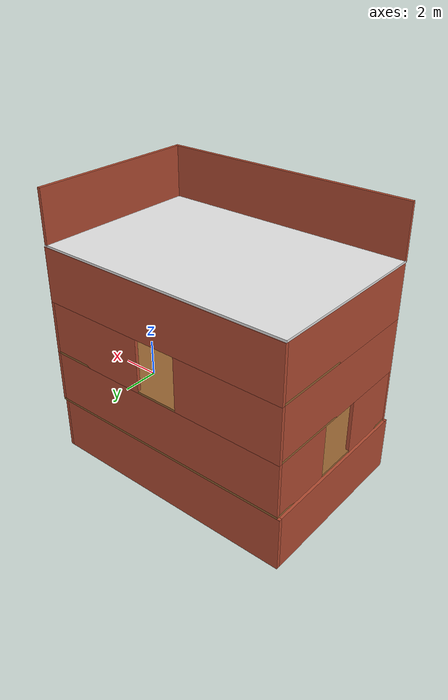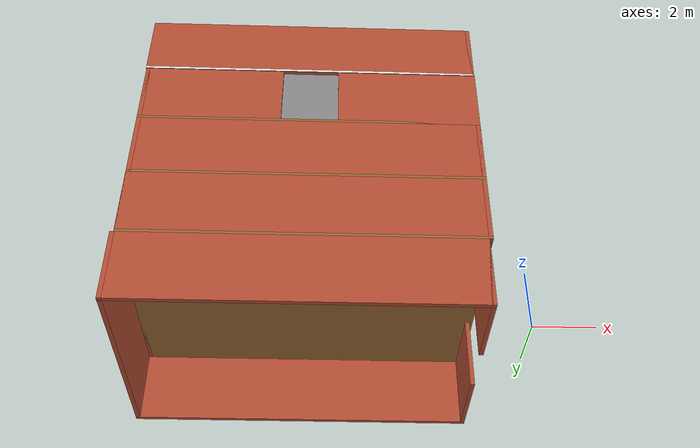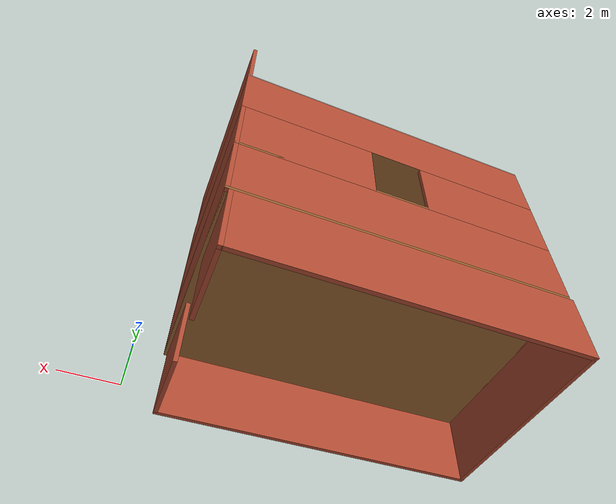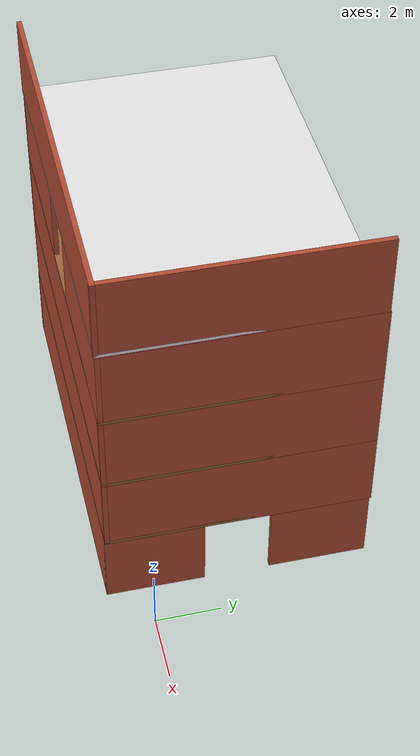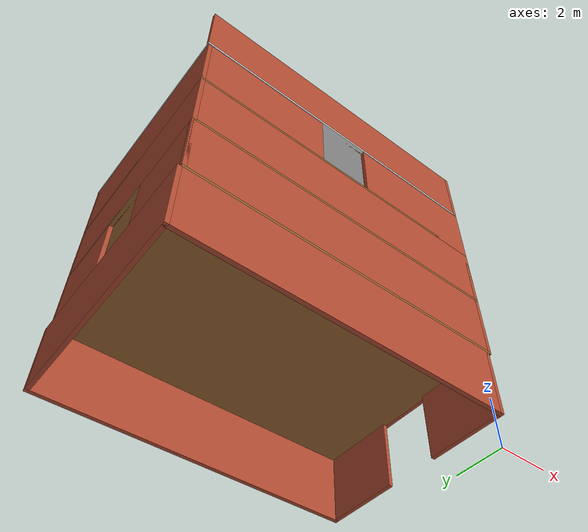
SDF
<?xml version='1.0'?>
<sdf version='1.8'>
  <model name='tower'>
    <pose>-6.62818 2.78501 0 0 -0 0</pose>
    <link name='Floor_0'>
      <collision name='Floor_0_Collision'>
        <geometry>
          <box>
            <size>12 8.00013 0.1</size>
          </box>
        </geometry>
        <pose>0 0 0.05 0 -0 0</pose>
      </collision>
      <visual name='Floor_0_Visual'>
        <pose>0 0 0.05 0 -0 0</pose>
        <geometry>
          <box>
            <size>12 8.00013 0.1</size>
          </box>
        </geometry>
        <material>
          <ambient>0.6 0.4 0.2 1</ambient>
          <diffuse>0.6 0.4 0.2 1</diffuse>
          <specular>0.1 0.1 0.1 1</specular>
        </material>
        <meta>
          <layer>1</layer>
        </meta>
      </visual>
      <pose>-0.508178 0.009968 2.5 0 -0 0</pose>
    </link>
    <link name='Floor_1'>
      <collision name='Floor_1_Collision'>
        <geometry>
          <box>
            <size>12 8 0.1</size>
          </box>
        </geometry>
        <pose>0 0 0.05 0 -0 0</pose>
      </collision>
      <visual name='Floor_1_Visual'>
        <pose>0 0 0.05 0 -0 0</pose>
        <geometry>
          <box>
            <size>12 8 0.1</size>
          </box>
        </geometry>
        <material>
          <ambient>0.6 0.4 0.2 1</ambient>
          <diffuse>0.6 0.4 0.2 1</diffuse>
          <specular>0.1 0.1 0.1 1</specular>
        </material>
        <meta>
          <layer>2</layer>
        </meta>
      </visual>
      <pose>-0.508178 0.009968 5 0 -0 0</pose>
    </link>
    <link name='Floor_2'>
      <collision name='Floor_2_Collision'>
        <geometry>
          <box>
            <size>12 8 0.1</size>
          </box>
        </geometry>
        <pose>0 0 0.05 0 -0 0</pose>
      </collision>
      <visual name='Floor_2_Visual'>
        <pose>0 0 0.05 0 -0 0</pose>
        <geometry>
          <box>
            <size>12 8 0.1</size>
          </box>
        </geometry>
        <material>
          <ambient>0.6 0.4 0.2 1</ambient>
          <diffuse>0.6 0.4 0.2 1</diffuse>
          <specular>0.1 0.1 0.1 1</specular>
        </material>
        <meta>
          <layer>3</layer>
        </meta>
      </visual>
      <pose>-0.508178 0.009968 7.5 0 -0 0</pose>
    </link>
    <link name='Floor_4'>
      <collision name='Floor_4_Collision'>
        <geometry>
          <box>
            <size>12 8 0.1</size>
          </box>
        </geometry>
        <pose>0 0 0.05 0 -0 0</pose>
      </collision>
      <visual name='Floor_4_Visual'>
        <pose>0 0 0.05 0 -0 0</pose>
        <geometry>
          <box>
            <size>12 8 0.1</size>
          </box>
        </geometry>
        <material>
          <ambient>0.9 0.9 0.9 1</ambient>
          <diffuse>0.9 0.9 0.9 1</diffuse>
          <specular>0.2 0.2 0.2 1</specular>
        </material>
        <meta>
          <layer>4</layer>
        </meta>
      </visual>
      <pose>-0.528178 -0.010032 10 0 -0 0</pose>
    </link>
    <link name='Wall_0'>
      <collision name='Wall_0_Collision'>
        <geometry>
          <box>
            <size>12 0.15 2.5</size>
          </box>
        </geometry>
        <pose>0 0 1.25 0 -0 0</pose>
      </collision>
      <visual name='Wall_0_Visual'>
        <pose>0 0 1.25 0 -0 0</pose>
        <geometry>
          <box>
            <size>12 0.15 2.5</size>
          </box>
        </geometry>
        <material>
          <ambient>0.7 0.3 0.2 1</ambient>
          <diffuse>0.7 0.3 0.2 1</diffuse>
          <specular>0.1 0.1 0.1 1</specular>
        </material>
        <meta>
          <layer>0</layer>
        </meta>
      </visual>
      <pose>-0.628178 3.93497 0 0 -0 3.14159</pose>
    </link>
    <link name='Wall_10'>
      <collision name='Wall_10_Collision'>
        <geometry>
          <box>
            <size>12 0.15 2.5</size>
          </box>
        </geometry>
        <pose>0 0 1.25 0 -0 0</pose>
      </collision>
      <visual name='Wall_10_Visual'>
        <pose>0 0 1.25 0 -0 0</pose>
        <geometry>
          <box>
            <size>12 0.15 2.5</size>
          </box>
        </geometry>
        <material>
          <ambient>0.7 0.3 0.2 1</ambient>
          <diffuse>0.7 0.3 0.2 1</diffuse>
          <specular>0.1 0.1 0.1 1</specular>
        </material>
        <meta>
          <layer>1</layer>
        </meta>
      </visual>
      <pose>-0.508178 -3.91503 2.5 0 -0 0</pose>
    </link>
    <link name='Wall_12'>
      <collision name='Wall_12_Collision'>
        <geometry>
          <box>
            <size>8 0.15 2.5</size>
          </box>
        </geometry>
        <pose>0 0 1.25 0 -0 0</pose>
      </collision>
      <visual name='Wall_12_Visual'>
        <pose>0 0 1.25 0 -0 0</pose>
        <geometry>
          <box>
            <size>8 0.15 2.5</size>
          </box>
        </geometry>
        <material>
          <ambient>0.7 0.3 0.2 1</ambient>
          <diffuse>0.7 0.3 0.2 1</diffuse>
          <specular>0.1 0.1 0.1 1</specular>
        </material>
        <meta>
          <layer>1</layer>
        </meta>
      </visual>
      <pose>5.41682 0.009968 2.5 0 -0 -1.5708</pose>
    </link>
    <link name='Wall_13'>
      <collision name='Wall_13_Collision'>
        <geometry>
          <box>
            <size>3 0.15 2.5</size>
          </box>
        </geometry>
        <pose>0 0 1.25 0 -0 0</pose>
      </collision>
      <visual name='Wall_13_Visual'>
        <pose>0 0 1.25 0 -0 0</pose>
        <geometry>
          <box>
            <size>3 0.15 2.5</size>
          </box>
        </geometry>
        <material>
          <ambient>0.7 0.3 0.2 1</ambient>
          <diffuse>0.7 0.3 0.2 1</diffuse>
          <specular>0.1 0.1 0.1 1</specular>
        </material>
        <meta>
          <layer>1</layer>
        </meta>
      </visual>
      <pose>-6.43318 2.50997 2.5 0 -0 -1.5708</pose>
    </link>
    <link name='Wall_15'>
      <collision name='Wall_15_Collision'>
        <geometry>
          <box>
            <size>3 0.15 2.5</size>
          </box>
        </geometry>
        <pose>0 0 1.25 0 -0 0</pose>
      </collision>
      <visual name='Wall_15_Visual'>
        <pose>0 0 1.25 0 -0 0</pose>
        <geometry>
          <box>
            <size>3 0.15 2.5</size>
          </box>
        </geometry>
        <material>
          <ambient>0.7 0.3 0.2 1</ambient>
          <diffuse>0.7 0.3 0.2 1</diffuse>
          <specular>0.1 0.1 0.1 1</specular>
        </material>
        <meta>
          <layer>1</layer>
        </meta>
      </visual>
      <pose>-6.43318 -2.49003 2.5 0 -0 1.5708</pose>
    </link>
    <link name='Wall_18'>
      <collision name='Wall_18_Collision'>
        <geometry>
          <box>
            <size>12 0.15 2.5</size>
          </box>
        </geometry>
        <pose>0 0 1.25 0 -0 0</pose>
      </collision>
      <visual name='Wall_18_Visual'>
        <pose>0 0 1.25 0 -0 0</pose>
        <geometry>
          <box>
            <size>12 0.15 2.5</size>
          </box>
        </geometry>
        <material>
          <ambient>0.7 0.3 0.2 1</ambient>
          <diffuse>0.7 0.3 0.2 1</diffuse>
          <specular>0.1 0.1 0.1 1</specular>
        </material>
        <meta>
          <layer>2</layer>
        </meta>
      </visual>
      <pose>-0.508178 -3.91503 5 0 -0 0</pose>
    </link>
    <link name='Wall_19'>
      <collision name='Wall_19_Collision'>
        <geometry>
          <box>
            <size>8 0.15 2.5</size>
          </box>
        </geometry>
        <pose>0 0 1.25 0 -0 0</pose>
      </collision>
      <visual name='Wall_19_Visual'>
        <pose>0 0 1.25 0 -0 0</pose>
        <geometry>
          <box>
            <size>8 0.15 2.5</size>
          </box>
        </geometry>
        <material>
          <ambient>0.7 0.3 0.2 1</ambient>
          <diffuse>0.7 0.3 0.2 1</diffuse>
          <specular>0.1 0.1 0.1 1</specular>
        </material>
        <meta>
          <layer>2</layer>
        </meta>
      </visual>
      <pose>5.41682 0.009969 5 0 -0 -1.5708</pose>
    </link>
    <link name='Wall_2'>
      <collision name='Wall_2_Collision'>
        <geometry>
          <box>
            <size>8 0.15 2.5</size>
          </box>
        </geometry>
        <pose>0 0 1.25 0 -0 0</pose>
      </collision>
      <visual name='Wall_2_Visual'>
        <pose>0 0 1.25 0 -0 0</pose>
        <geometry>
          <box>
            <size>8 0.15 2.5</size>
          </box>
        </geometry>
        <material>
          <ambient>0.7 0.3 0.2 1</ambient>
          <diffuse>0.7 0.3 0.2 1</diffuse>
          <specular>0.1 0.1 0.1 1</specular>
        </material>
        <meta>
          <layer>0</layer>
        </meta>
      </visual>
      <pose>-6.55318 0.009968 0 0 -0 -1.5708</pose>
    </link>
    <link name='Wall_20'>
      <collision name='Wall_20_Collision'>
        <geometry>
          <box>
            <size>8 0.15 2.5</size>
          </box>
        </geometry>
        <pose>0 0 1.25 0 -0 0</pose>
      </collision>
      <visual name='Wall_20_Visual'>
        <pose>0 0 1.25 0 -0 0</pose>
        <geometry>
          <box>
            <size>8 0.15 2.5</size>
          </box>
        </geometry>
        <material>
          <ambient>0.7 0.3 0.2 1</ambient>
          <diffuse>0.7 0.3 0.2 1</diffuse>
          <specular>0.1 0.1 0.1 1</specular>
        </material>
        <meta>
          <layer>2</layer>
        </meta>
      </visual>
      <pose>-6.43318 0.009968 5 0 -0 -1.5708</pose>
    </link>
    <link name='Wall_24'>
      <collision name='Wall_24_Collision'>
        <geometry>
          <box>
            <size>5 0.15 2.5</size>
          </box>
        </geometry>
        <pose>0 0 1.25 0 -0 0</pose>
      </collision>
      <visual name='Wall_24_Visual'>
        <pose>0 0 1.25 0 -0 0</pose>
        <geometry>
          <box>
            <size>5 0.15 2.5</size>
          </box>
        </geometry>
        <material>
          <ambient>0.7 0.3 0.2 1</ambient>
          <diffuse>0.7 0.3 0.2 1</diffuse>
          <specular>0.1 0.1 0.1 1</specular>
        </material>
        <meta>
          <layer>2</layer>
        </meta>
      </visual>
      <pose>-4.00818 3.93497 5 0 -0 0</pose>
    </link>
    <link name='Wall_26'>
      <collision name='Wall_26_Collision'>
        <geometry>
          <box>
            <size>5 0.15 2.5</size>
          </box>
        </geometry>
        <pose>0 0 1.25 0 -0 0</pose>
      </collision>
      <visual name='Wall_26_Visual'>
        <pose>0 0 1.25 0 -0 0</pose>
        <geometry>
          <box>
            <size>5 0.15 2.5</size>
          </box>
        </geometry>
        <material>
          <ambient>0.7 0.3 0.2 1</ambient>
          <diffuse>0.7 0.3 0.2 1</diffuse>
          <specular>0.1 0.1 0.1 1</specular>
        </material>
        <meta>
          <layer>2</layer>
        </meta>
      </visual>
      <pose>2.99182 3.93497 5 0 -0 3.14159</pose>
    </link>
    <link name='Wall_29'>
      <collision name='Wall_29_Collision'>
        <geometry>
          <box>
            <size>8 0.15 2.5</size>
          </box>
        </geometry>
        <pose>0 0 1.25 0 -0 0</pose>
      </collision>
      <visual name='Wall_29_Visual'>
        <pose>0 0 1.25 0 -0 0</pose>
        <geometry>
          <box>
            <size>8 0.15 2.5</size>
          </box>
        </geometry>
        <material>
          <ambient>0.7 0.3 0.2 1</ambient>
          <diffuse>0.7 0.3 0.2 1</diffuse>
          <specular>0.1 0.1 0.1 1</specular>
        </material>
        <meta>
          <layer>3</layer>
        </meta>
      </visual>
      <pose>5.41682 0.009968 7.5 0 -0 -1.5708</pose>
    </link>
    <link name='Wall_3'>
      <collision name='Wall_3_Collision'>
        <geometry>
          <box>
            <size>12 0.15 2.5</size>
          </box>
        </geometry>
        <pose>0 0 1.25 0 -0 0</pose>
      </collision>
      <visual name='Wall_3_Visual'>
        <pose>0 0 1.25 0 -0 0</pose>
        <geometry>
          <box>
            <size>12 0.15 2.5</size>
          </box>
        </geometry>
        <material>
          <ambient>0.7 0.3 0.2 1</ambient>
          <diffuse>0.7 0.3 0.2 1</diffuse>
          <specular>0.1 0.1 0.1 1</specular>
        </material>
        <meta>
          <layer>0</layer>
        </meta>
      </visual>
      <pose>-0.628178 -3.91503 0 0 -0 0</pose>
    </link>
    <link name='Wall_30'>
      <collision name='Wall_30_Collision'>
        <geometry>
          <box>
            <size>8 0.15 2.5</size>
          </box>
        </geometry>
        <pose>0 0 1.25 0 -0 0</pose>
      </collision>
      <visual name='Wall_30_Visual'>
        <pose>0 0 1.25 0 -0 0</pose>
        <geometry>
          <box>
            <size>8 0.15 2.5</size>
          </box>
        </geometry>
        <material>
          <ambient>0.7 0.3 0.2 1</ambient>
          <diffuse>0.7 0.3 0.2 1</diffuse>
          <specular>0.1 0.1 0.1 1</specular>
        </material>
        <meta>
          <layer>3</layer>
        </meta>
      </visual>
      <pose>-6.43318 0.009969 7.5 0 -0 -1.5708</pose>
    </link>
    <link name='Wall_33'>
      <collision name='Wall_33_Collision'>
        <geometry>
          <box>
            <size>12 0.15 2.5</size>
          </box>
        </geometry>
        <pose>0 0 1.25 0 -0 0</pose>
      </collision>
      <visual name='Wall_33_Visual'>
        <pose>0 0 1.25 0 -0 0</pose>
        <geometry>
          <box>
            <size>12 0.15 2.5</size>
          </box>
        </geometry>
        <material>
          <ambient>0.7 0.3 0.2 1</ambient>
          <diffuse>0.7 0.3 0.2 1</diffuse>
          <specular>0.1 0.1 0.1 1</specular>
        </material>
        <meta>
          <layer>3</layer>
        </meta>
      </visual>
      <pose>-0.508178 3.93497 7.5 0 -0 0</pose>
    </link>
    <link name='Wall_35'>
      <collision name='Wall_35_Collision'>
        <geometry>
          <box>
            <size>5 0.15 2.5</size>
          </box>
        </geometry>
        <pose>0 0 1.25 0 -0 0</pose>
      </collision>
      <visual name='Wall_35_Visual'>
        <pose>0 0 1.25 0 -0 0</pose>
        <geometry>
          <box>
            <size>5 0.15 2.5</size>
          </box>
        </geometry>
        <material>
          <ambient>0.7 0.3 0.2 1</ambient>
          <diffuse>0.7 0.3 0.2 1</diffuse>
          <specular>0.1 0.1 0.1 1</specular>
        </material>
        <meta>
          <layer>3</layer>
        </meta>
      </visual>
      <pose>-4.00818 -3.91503 7.5 0 -0 0</pose>
    </link>
    <link name='Wall_37'>
      <collision name='Wall_37_Collision'>
        <geometry>
          <box>
            <size>5 0.15 2.5</size>
          </box>
        </geometry>
        <pose>0 0 1.25 0 -0 0</pose>
      </collision>
      <visual name='Wall_37_Visual'>
        <pose>0 0 1.25 0 -0 0</pose>
        <geometry>
          <box>
            <size>5 0.15 2.5</size>
          </box>
        </geometry>
        <material>
          <ambient>0.7 0.3 0.2 1</ambient>
          <diffuse>0.7 0.3 0.2 1</diffuse>
          <specular>0.1 0.1 0.1 1</specular>
        </material>
        <meta>
          <layer>3</layer>
        </meta>
      </visual>
      <pose>2.99182 -3.91503 7.5 0 -0 3.14159</pose>
    </link>
    <link name='Wall_4'>
      <collision name='Wall_4_Collision'>
        <geometry>
          <box>
            <size>3 0.15 2.5</size>
          </box>
        </geometry>
        <pose>0 0 1.25 0 -0 0</pose>
      </collision>
      <visual name='Wall_4_Visual'>
        <pose>0 0 1.25 0 -0 0</pose>
        <geometry>
          <box>
            <size>3 0.15 2.5</size>
          </box>
        </geometry>
        <material>
          <ambient>0.7 0.3 0.2 1</ambient>
          <diffuse>0.7 0.3 0.2 1</diffuse>
          <specular>0.1 0.1 0.1 1</specular>
        </material>
        <meta>
          <layer>0</layer>
        </meta>
      </visual>
      <pose>5.29682 -2.49003 0 0 -0 1.5708</pose>
    </link>
    <link name='Wall_51'>
      <collision name='Wall_51_Collision'>
        <geometry>
          <box>
            <size>12 0.15 2.5</size>
          </box>
        </geometry>
        <pose>0 0 1.25 0 -0 0</pose>
      </collision>
      <visual name='Wall_51_Visual'>
        <pose>0 0 1.25 0 -0 0</pose>
        <geometry>
          <box>
            <size>12 0.15 2.5</size>
          </box>
        </geometry>
        <material>
          <ambient>0.7 0.3 0.2 1</ambient>
          <diffuse>0.7 0.3 0.2 1</diffuse>
          <specular>0.1 0.1 0.1 1</specular>
        </material>
        <meta>
          <layer>4</layer>
        </meta>
      </visual>
      <pose>-0.528178 -3.93503 10 0 -0 0</pose>
    </link>
    <link name='Wall_53'>
      <collision name='Wall_53_Collision'>
        <geometry>
          <box>
            <size>8 0.15 2.5</size>
          </box>
        </geometry>
        <pose>0 0 1.25 0 -0 0</pose>
      </collision>
      <visual name='Wall_53_Visual'>
        <pose>0 0 1.25 0 -0 0</pose>
        <geometry>
          <box>
            <size>8 0.15 2.5</size>
          </box>
        </geometry>
        <material>
          <ambient>0.7 0.3 0.2 1</ambient>
          <diffuse>0.7 0.3 0.2 1</diffuse>
          <specular>0.1 0.1 0.1 1</specular>
        </material>
        <meta>
          <layer>4</layer>
        </meta>
      </visual>
      <pose>5.39682 -0.010032 10 0 -0 -1.5708</pose>
    </link>
    <link name='Wall_6'>
      <collision name='Wall_6_Collision'>
        <geometry>
          <box>
            <size>3 0.15 2.5</size>
          </box>
        </geometry>
        <pose>0 0 1.25 0 -0 0</pose>
      </collision>
      <visual name='Wall_6_Visual'>
        <pose>0 0 1.25 0 -0 0</pose>
        <geometry>
          <box>
            <size>3 0.15 2.5</size>
          </box>
        </geometry>
        <material>
          <ambient>0.7 0.3 0.2 1</ambient>
          <diffuse>0.7 0.3 0.2 1</diffuse>
          <specular>0.1 0.1 0.1 1</specular>
        </material>
        <meta>
          <layer>0</layer>
        </meta>
      </visual>
      <pose>5.29682 2.50997 0 0 -0 -1.5708</pose>
    </link>
    <link name='Wall_8'>
      <collision name='Wall_8_Collision'>
        <geometry>
          <box>
            <size>12 0.15 2.5</size>
          </box>
        </geometry>
        <pose>0 0 1.25 0 -0 0</pose>
      </collision>
      <visual name='Wall_8_Visual'>
        <pose>0 0 1.25 0 -0 0</pose>
        <geometry>
          <box>
            <size>12 0.15 2.5</size>
          </box>
        </geometry>
        <material>
          <ambient>0.7 0.3 0.2 1</ambient>
          <diffuse>0.7 0.3 0.2 1</diffuse>
          <specular>0.1 0.1 0.1 1</specular>
        </material>
        <meta>
          <layer>1</layer>
        </meta>
      </visual>
      <pose>-0.508178 3.93497 2.5 0 -0 3.14159</pose>
    </link>
    <static>1</static>
  </model>
</sdf>
